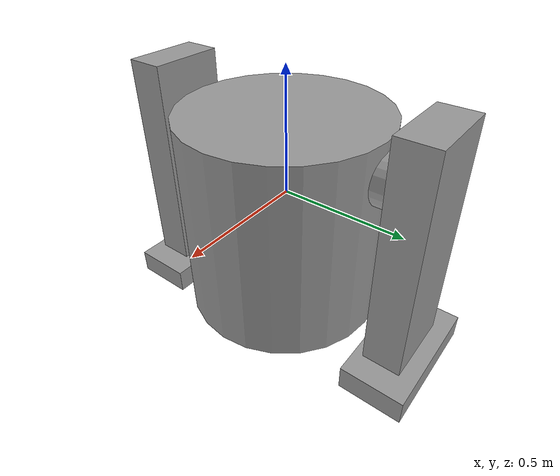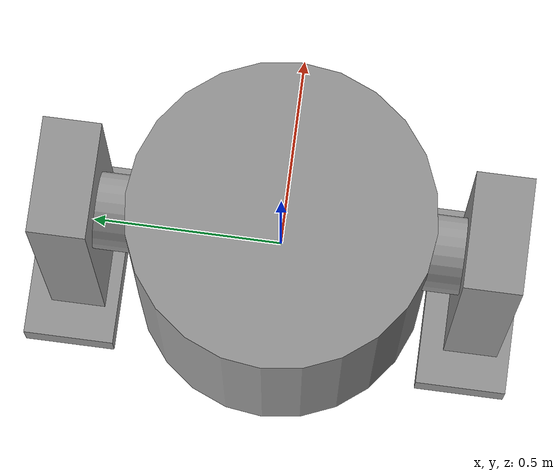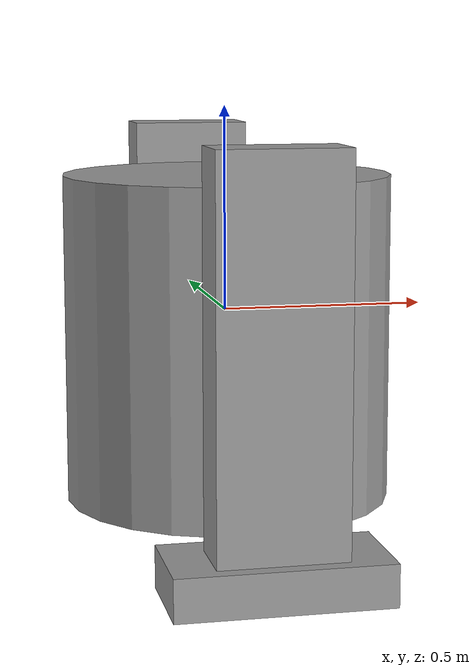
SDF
<?xml version='1.0'?>
<sdf version='1.6'>
  <model name='robot3'>
    <link name='link_2'>
      <pose frame=''>0.005 -0 -0.064976 0 -0 0</pose>
      <inertial>
        <mass>1</mass>
        <inertia>
          <ixx>0.145833</ixx>
          <ixy>0</ixy>
          <ixz>0</ixz>
          <iyy>0.145833</iyy>
          <iyz>0</iyz>
          <izz>0.125</izz>
        </inertia>
        <pose frame=''>0 0 0 0 -0 0</pose>
      </inertial>
      <self_collide>0</self_collide>
      <kinematic>0</kinematic>
      <visual name='visual'>
        <pose frame=''>0 0 0 0 -0 0</pose>
        <geometry>
          <cylinder>
            <radius>0.4</radius>
            <length>0.8</length>
          </cylinder>
        </geometry>
        <material>
          <lighting>1</lighting>
          <script>
            <uri>file://media/materials/scripts/gazebo.material</uri>
            <name>Gazebo/Grey</name>
          </script>
          <shader type='pixel'>
            <normal_map>__default__</normal_map>
          </shader>
          <ambient>0.3 0.3 0.3 1</ambient>
          <diffuse>0.7 0.7 0.7 1</diffuse>
          <specular>0.01 0.01 0.01 1</specular>
          <emissive>0 0 0 1</emissive>
        </material>
        <transparency>0</transparency>
        <cast_shadows>1</cast_shadows>
      </visual>
      <collision name='collision'>
        <laser_retro>0</laser_retro>
        <max_contacts>10</max_contacts>
        <pose frame=''>0 0 0 0 -0 0</pose>
        <geometry>
          <cylinder>
            <radius>0.4</radius>
            <length>0.8</length>
          </cylinder>
        </geometry>
        <surface>
          <friction>
            <ode>
              <mu>1</mu>
              <mu2>1</mu2>
              <fdir1>0 0 0</fdir1>
              <slip1>0</slip1>
              <slip2>0</slip2>
            </ode>
            <torsional>
              <coefficient>1</coefficient>
              <patch_radius>0</patch_radius>
              <surface_radius>0</surface_radius>
              <use_patch_radius>1</use_patch_radius>
              <ode>
                <slip>0</slip>
              </ode>
            </torsional>
          </friction>
          <bounce>
            <restitution_coefficient>0</restitution_coefficient>
            <threshold>1e+06</threshold>
          </bounce>
          <contact>
            <collide_without_contact>0</collide_without_contact>
            <collide_without_contact_bitmask>1</collide_without_contact_bitmask>
            <collide_bitmask>1</collide_bitmask>
            <ode>
              <soft_cfm>0</soft_cfm>
              <soft_erp>0.2</soft_erp>
              <kp>1e+13</kp>
              <kd>1</kd>
              <max_vel>0.01</max_vel>
              <min_depth>0</min_depth>
            </ode>
            <bullet>
              <split_impulse>1</split_impulse>
              <split_impulse_penetration_threshold>-0.01</split_impulse_penetration_threshold>
              <soft_cfm>0</soft_cfm>
              <soft_erp>0.2</soft_erp>
              <kp>1e+13</kp>
              <kd>1</kd>
            </bullet>
          </contact>
        </surface>
      </collision>
    </link>
    <link name='link_0'>
      <pose frame=''>0.00499 0.565134 -0.515032 -0.000625 0 -0.000608</pose>
      <inertial>
        <mass>1</mass>
        <inertia>
          <ixx>0.166667</ixx>
          <ixy>0</ixy>
          <ixz>0</ixz>
          <iyy>0.166667</iyy>
          <iyz>0</iyz>
          <izz>0.166667</izz>
        </inertia>
        <pose frame=''>0 0 0 0 -0 0</pose>
      </inertial>
      <gravity>1</gravity>
      <self_collide>0</self_collide>
      <kinematic>0</kinematic>
      <visual name='visual'>
        <pose frame=''>0 0 0 0 -0 0</pose>
        <geometry>
          <box>
            <size>0.5 0.25 0.1</size>
          </box>
        </geometry>
        <material>
          <lighting>1</lighting>
          <script>
            <uri>file://media/materials/scripts/gazebo.material</uri>
            <name>Gazebo/Grey</name>
          </script>
          <shader type='pixel'>
            <normal_map>__default__</normal_map>
          </shader>
          <ambient>0.3 0.3 0.3 1</ambient>
          <diffuse>0.7 0.7 0.7 1</diffuse>
          <specular>0.01 0.01 0.01 1</specular>
          <emissive>0 0 0 1</emissive>
        </material>
        <transparency>0</transparency>
        <cast_shadows>1</cast_shadows>
      </visual>
      <collision name='collision'>
        <laser_retro>0</laser_retro>
        <max_contacts>10</max_contacts>
        <pose frame=''>0 0 0 0 -0 0</pose>
        <geometry>
          <box>
            <size>0.5 0.25 0.1</size>
          </box>
        </geometry>
        <surface>
          <friction>
            <ode>
              <mu>1</mu>
              <mu2>1</mu2>
              <fdir1>0 0 0</fdir1>
              <slip1>0</slip1>
              <slip2>0</slip2>
            </ode>
            <torsional>
              <coefficient>1</coefficient>
              <patch_radius>0</patch_radius>
              <surface_radius>0</surface_radius>
              <use_patch_radius>1</use_patch_radius>
              <ode>
                <slip>0</slip>
              </ode>
            </torsional>
          </friction>
          <bounce>
            <restitution_coefficient>0</restitution_coefficient>
            <threshold>1e+06</threshold>
          </bounce>
          <contact>
            <collide_without_contact>0</collide_without_contact>
            <collide_without_contact_bitmask>1</collide_without_contact_bitmask>
            <collide_bitmask>1</collide_bitmask>
            <ode>
              <soft_cfm>0</soft_cfm>
              <soft_erp>0.2</soft_erp>
              <kp>1e+13</kp>
              <kd>1</kd>
              <max_vel>0.01</max_vel>
              <min_depth>0</min_depth>
            </ode>
            <bullet>
              <split_impulse>1</split_impulse>
              <split_impulse_penetration_threshold>-0.01</split_impulse_penetration_threshold>
              <soft_cfm>0</soft_cfm>
              <soft_erp>0.2</soft_erp>
              <kp>1e+13</kp>
              <kd>1</kd>
            </bullet>
          </contact>
        </surface>
      </collision>
    </link>
    <link name='link_0_clone'>
      <pose frame=''>0.00499 -0.535072 -0.514954 -0.00125 -1e-06 -0.001216</pose>
      <inertial>
        <mass>1</mass>
        <inertia>
          <ixx>0.166667</ixx>
          <ixy>0</ixy>
          <ixz>0</ixz>
          <iyy>0.166667</iyy>
          <iyz>0</iyz>
          <izz>0.166667</izz>
        </inertia>
        <pose frame=''>0 0 0 0 -0 0</pose>
      </inertial>
      <self_collide>0</self_collide>
      <kinematic>0</kinematic>
      <visual name='visual'>
        <pose frame=''>0 0 0 0 -0 0</pose>
        <geometry>
          <box>
            <size>0.5 0.25 0.1</size>
          </box>
        </geometry>
        <material>
          <lighting>1</lighting>
          <script>
            <uri>file://media/materials/scripts/gazebo.material</uri>
            <name>Gazebo/Grey</name>
          </script>
          <shader type='pixel'>
            <normal_map>__default__</normal_map>
          </shader>
          <ambient>0.3 0.3 0.3 1</ambient>
          <diffuse>0.7 0.7 0.7 1</diffuse>
          <specular>0.01 0.01 0.01 1</specular>
          <emissive>0 0 0 1</emissive>
        </material>
        <transparency>0</transparency>
        <cast_shadows>1</cast_shadows>
      </visual>
      <collision name='collision'>
        <laser_retro>0</laser_retro>
        <max_contacts>10</max_contacts>
        <pose frame=''>0 0 0 0 -0 0</pose>
        <geometry>
          <box>
            <size>0.5 0.25 0.1</size>
          </box>
        </geometry>
        <surface>
          <friction>
            <ode>
              <mu>1</mu>
              <mu2>1</mu2>
              <fdir1>0 0 0</fdir1>
              <slip1>0</slip1>
              <slip2>0</slip2>
            </ode>
            <torsional>
              <coefficient>1</coefficient>
              <patch_radius>0</patch_radius>
              <surface_radius>0</surface_radius>
              <use_patch_radius>1</use_patch_radius>
              <ode>
                <slip>0</slip>
              </ode>
            </torsional>
          </friction>
          <bounce>
            <restitution_coefficient>0</restitution_coefficient>
            <threshold>1e+06</threshold>
          </bounce>
          <contact>
            <collide_without_contact>0</collide_without_contact>
            <collide_without_contact_bitmask>1</collide_without_contact_bitmask>
            <collide_bitmask>1</collide_bitmask>
            <ode>
              <soft_cfm>0</soft_cfm>
              <soft_erp>0.2</soft_erp>
              <kp>1e+13</kp>
              <kd>1</kd>
              <max_vel>0.01</max_vel>
              <min_depth>0</min_depth>
            </ode>
            <bullet>
              <split_impulse>1</split_impulse>
              <split_impulse_penetration_threshold>-0.01</split_impulse_penetration_threshold>
              <soft_cfm>0</soft_cfm>
              <soft_erp>0.2</soft_erp>
              <kp>1e+13</kp>
              <kd>1</kd>
            </bullet>
          </contact>
        </surface>
      </collision>
    </link>
    <link name='link_3'>
      <pose frame=''>-0.015 -1e-06 0.194928 1.5707 -0 0</pose>
      <inertial>
        <mass>1</mass>
        <inertia>
          <ixx>0.145833</ixx>
          <ixy>0</ixy>
          <ixz>0</ixz>
          <iyy>0.145833</iyy>
          <iyz>0</iyz>
          <izz>0.125</izz>
        </inertia>
        <pose frame=''>0 0 0 0 -0 0</pose>
      </inertial>
      <self_collide>0</self_collide>
      <kinematic>0</kinematic>
      <visual name='visual'>
        <pose frame=''>0 0 0 0 -0 0</pose>
        <geometry>
          <cylinder>
            <radius>0.1</radius>
            <length>1.25</length>
          </cylinder>
        </geometry>
        <material>
          <lighting>1</lighting>
          <script>
            <uri>file://media/materials/scripts/gazebo.material</uri>
            <name>Gazebo/Grey</name>
          </script>
          <shader type='pixel'>
            <normal_map>__default__</normal_map>
          </shader>
          <ambient>0.3 0.3 0.3 1</ambient>
          <diffuse>0.7 0.7 0.7 1</diffuse>
          <specular>0.01 0.01 0.01 1</specular>
          <emissive>0 0 0 1</emissive>
        </material>
        <transparency>0</transparency>
        <cast_shadows>1</cast_shadows>
      </visual>
      <collision name='collision'>
        <laser_retro>0</laser_retro>
        <max_contacts>10</max_contacts>
        <pose frame=''>0 0 0 0 -0 0</pose>
        <geometry>
          <cylinder>
            <radius>0.1</radius>
            <length>1.25</length>
          </cylinder>
        </geometry>
        <surface>
          <friction>
            <ode>
              <mu>1</mu>
              <mu2>1</mu2>
              <fdir1>0 0 0</fdir1>
              <slip1>0</slip1>
              <slip2>0</slip2>
            </ode>
            <torsional>
              <coefficient>1</coefficient>
              <patch_radius>0</patch_radius>
              <surface_radius>0</surface_radius>
              <use_patch_radius>1</use_patch_radius>
              <ode>
                <slip>0</slip>
              </ode>
            </torsional>
          </friction>
          <bounce>
            <restitution_coefficient>0</restitution_coefficient>
            <threshold>1e+06</threshold>
          </bounce>
          <contact>
            <collide_without_contact>0</collide_without_contact>
            <collide_without_contact_bitmask>1</collide_without_contact_bitmask>
            <collide_bitmask>1</collide_bitmask>
            <ode>
              <soft_cfm>0</soft_cfm>
              <soft_erp>0.2</soft_erp>
              <kp>1e+13</kp>
              <kd>1</kd>
              <max_vel>0.01</max_vel>
              <min_depth>0</min_depth>
            </ode>
            <bullet>
              <split_impulse>1</split_impulse>
              <split_impulse_penetration_threshold>-0.01</split_impulse_penetration_threshold>
              <soft_cfm>0</soft_cfm>
              <soft_erp>0.2</soft_erp>
              <kp>1e+13</kp>
              <kd>1</kd>
            </bullet>
          </contact>
        </surface>
      </collision>
    </link>
    <link name='link_4'>
      <pose frame=''>0.005 -0.550011 -0.064976 0 -0 0</pose>
      <inertial>
        <mass>1</mass>
        <inertia>
          <ixx>0.166667</ixx>
          <ixy>0</ixy>
          <ixz>0</ixz>
          <iyy>0.166667</iyy>
          <iyz>0</iyz>
          <izz>0.166667</izz>
        </inertia>
        <pose frame=''>0 0 0 0 -0 0</pose>
      </inertial>
      <self_collide>0</self_collide>
      <kinematic>0</kinematic>
      <visual name='visual'>
        <pose frame=''>0 0 0 0 -0 0</pose>
        <geometry>
          <box>
            <size>0.3 0.15 1</size>
          </box>
        </geometry>
        <material>
          <lighting>1</lighting>
          <script>
            <uri>file://media/materials/scripts/gazebo.material</uri>
            <name>Gazebo/Grey</name>
          </script>
          <shader type='pixel'>
            <normal_map>__default__</normal_map>
          </shader>
          <ambient>0.3 0.3 0.3 1</ambient>
          <diffuse>0.7 0.7 0.7 1</diffuse>
          <specular>0.01 0.01 0.01 1</specular>
          <emissive>0 0 0 1</emissive>
        </material>
        <transparency>0</transparency>
        <cast_shadows>1</cast_shadows>
      </visual>
      <collision name='collision'>
        <laser_retro>0</laser_retro>
        <max_contacts>10</max_contacts>
        <pose frame=''>0 0 0 0 -0 0</pose>
        <geometry>
          <box>
            <size>0.3 0.15 1</size>
          </box>
        </geometry>
        <surface>
          <friction>
            <ode>
              <mu>1</mu>
              <mu2>1</mu2>
              <fdir1>0 0 0</fdir1>
              <slip1>0</slip1>
              <slip2>0</slip2>
            </ode>
            <torsional>
              <coefficient>1</coefficient>
              <patch_radius>0</patch_radius>
              <surface_radius>0</surface_radius>
              <use_patch_radius>1</use_patch_radius>
              <ode>
                <slip>0</slip>
              </ode>
            </torsional>
          </friction>
          <bounce>
            <restitution_coefficient>0</restitution_coefficient>
            <threshold>1e+06</threshold>
          </bounce>
          <contact>
            <collide_without_contact>0</collide_without_contact>
            <collide_without_contact_bitmask>1</collide_without_contact_bitmask>
            <collide_bitmask>1</collide_bitmask>
            <ode>
              <soft_cfm>0</soft_cfm>
              <soft_erp>0.2</soft_erp>
              <kp>1e+13</kp>
              <kd>1</kd>
              <max_vel>0.01</max_vel>
              <min_depth>0</min_depth>
            </ode>
            <bullet>
              <split_impulse>1</split_impulse>
              <split_impulse_penetration_threshold>-0.01</split_impulse_penetration_threshold>
              <soft_cfm>0</soft_cfm>
              <soft_erp>0.2</soft_erp>
              <kp>1e+13</kp>
              <kd>1</kd>
            </bullet>
          </contact>
        </surface>
      </collision>
    </link>
    <link name='link_4_clone'>
      <pose frame=''>0.005 0.550012 -0.064976 0 -0 0</pose>
      <inertial>
        <mass>1</mass>
        <inertia>
          <ixx>0.166667</ixx>
          <ixy>0</ixy>
          <ixz>0</ixz>
          <iyy>0.166667</iyy>
          <iyz>0</iyz>
          <izz>0.166667</izz>
        </inertia>
        <pose frame=''>0 0 0 0 -0 0</pose>
      </inertial>
      <self_collide>0</self_collide>
      <kinematic>0</kinematic>
      <visual name='visual'>
        <pose frame=''>0 0 0 0 -0 0</pose>
        <geometry>
          <box>
            <size>0.3 0.15 1</size>
          </box>
        </geometry>
        <material>
          <lighting>1</lighting>
          <script>
            <uri>file://media/materials/scripts/gazebo.material</uri>
            <name>Gazebo/Grey</name>
          </script>
          <shader type='pixel'>
            <normal_map>__default__</normal_map>
          </shader>
          <ambient>0.3 0.3 0.3 1</ambient>
          <diffuse>0.7 0.7 0.7 1</diffuse>
          <specular>0.01 0.01 0.01 1</specular>
          <emissive>0 0 0 1</emissive>
        </material>
        <transparency>0</transparency>
        <cast_shadows>1</cast_shadows>
      </visual>
      <collision name='collision'>
        <laser_retro>0</laser_retro>
        <max_contacts>10</max_contacts>
        <pose frame=''>0 0 0 0 -0 0</pose>
        <geometry>
          <box>
            <size>0.3 0.15 1</size>
          </box>
        </geometry>
        <surface>
          <friction>
            <ode>
              <mu>1</mu>
              <mu2>1</mu2>
              <fdir1>0 0 0</fdir1>
              <slip1>0</slip1>
              <slip2>0</slip2>
            </ode>
            <torsional>
              <coefficient>1</coefficient>
              <patch_radius>0</patch_radius>
              <surface_radius>0</surface_radius>
              <use_patch_radius>1</use_patch_radius>
              <ode>
                <slip>0</slip>
              </ode>
            </torsional>
          </friction>
          <bounce>
            <restitution_coefficient>0</restitution_coefficient>
            <threshold>1e+06</threshold>
          </bounce>
          <contact>
            <collide_without_contact>0</collide_without_contact>
            <collide_without_contact_bitmask>1</collide_without_contact_bitmask>
            <collide_bitmask>1</collide_bitmask>
            <ode>
              <soft_cfm>0</soft_cfm>
              <soft_erp>0.2</soft_erp>
              <kp>1e+13</kp>
              <kd>1</kd>
              <max_vel>0.01</max_vel>
              <min_depth>0</min_depth>
            </ode>
            <bullet>
              <split_impulse>1</split_impulse>
              <split_impulse_penetration_threshold>-0.01</split_impulse_penetration_threshold>
              <soft_cfm>0</soft_cfm>
              <soft_erp>0.2</soft_erp>
              <kp>1e+13</kp>
              <kd>1</kd>
            </bullet>
          </contact>
        </surface>
      </collision>
    </link>
    <joint name='link_2_JOINT_2' type='revolute'>
      <parent>link_2</parent>
      <child>link_3</child>
      <pose frame=''>0 0 0 0 -0 0</pose>
      <axis>
        <xyz>1 0 0</xyz>
        <use_parent_model_frame>0</use_parent_model_frame>
        <limit>
          <lower>-1.79769e+308</lower>
          <upper>1.79769e+308</upper>
          <effort>-1</effort>
          <velocity>-1</velocity>
        </limit>
        <dynamics>
          <spring_reference>0</spring_reference>
          <spring_stiffness>0</spring_stiffness>
          <damping>0</damping>
          <friction>0</friction>
        </dynamics>
      </axis>
      <physics>
        <ode>
          <limit>
            <cfm>0</cfm>
            <erp>0.2</erp>
          </limit>
          <suspension>
            <cfm>0</cfm>
            <erp>0.2</erp>
          </suspension>
        </ode>
      </physics>
    </joint>
    <joint name='link_3_JOINT_3' type='revolute'>
      <parent>link_3</parent>
      <child>link_4</child>
      <pose frame=''>0 0 0 0 -0 0</pose>
      <axis>
        <xyz>1 0 0</xyz>
        <use_parent_model_frame>0</use_parent_model_frame>
        <limit>
          <lower>-1.79769e+308</lower>
          <upper>1.79769e+308</upper>
          <effort>-1</effort>
          <velocity>-1</velocity>
        </limit>
        <dynamics>
          <spring_reference>0</spring_reference>
          <spring_stiffness>0</spring_stiffness>
          <damping>0</damping>
          <friction>0</friction>
        </dynamics>
      </axis>
      <physics>
        <ode>
          <limit>
            <cfm>0</cfm>
            <erp>0.2</erp>
          </limit>
          <suspension>
            <cfm>0</cfm>
            <erp>0.2</erp>
          </suspension>
        </ode>
      </physics>
    </joint>
    <joint name='link_3_JOINT_4' type='revolute'>
      <parent>link_3</parent>
      <child>link_4_clone</child>
      <pose frame=''>0 0 0 0 -0 0</pose>
      <axis>
        <xyz>1 0 0</xyz>
        <use_parent_model_frame>0</use_parent_model_frame>
        <limit>
          <lower>-1.79769e+308</lower>
          <upper>1.79769e+308</upper>
          <effort>-1</effort>
          <velocity>-1</velocity>
        </limit>
        <dynamics>
          <spring_reference>0</spring_reference>
          <spring_stiffness>0</spring_stiffness>
          <damping>0</damping>
          <friction>0</friction>
        </dynamics>
      </axis>
      <physics>
        <ode>
          <limit>
            <cfm>0</cfm>
            <erp>0.2</erp>
          </limit>
          <suspension>
            <cfm>0</cfm>
            <erp>0.2</erp>
          </suspension>
        </ode>
      </physics>
    </joint>
    <joint name='link_4_JOINT_1' type='fixed'>
      <parent>link_4</parent>
      <child>link_0_clone</child>
      <pose frame=''>0 0 0 0 -0 0</pose>
      <physics>
        <ode>
          <limit>
            <cfm>0</cfm>
            <erp>0.2</erp>
          </limit>
          <suspension>
            <cfm>0</cfm>
            <erp>0.2</erp>
          </suspension>
        </ode>
      </physics>
    </joint>
    <joint name='link_4_clone_JOINT_0' type='fixed'>
      <parent>link_4_clone</parent>
      <child>link_0</child>
      <pose frame=''>0 0 0 0 -0 0</pose>
      <physics>
        <ode>
          <limit>
            <cfm>0</cfm>
            <erp>0.2</erp>
          </limit>
          <suspension>
            <cfm>0</cfm>
            <erp>0.2</erp>
          </suspension>
        </ode>
      </physics>
    </joint>
    <static>0</static>
    <allow_auto_disable>1</allow_auto_disable>
  </model>
</sdf>
